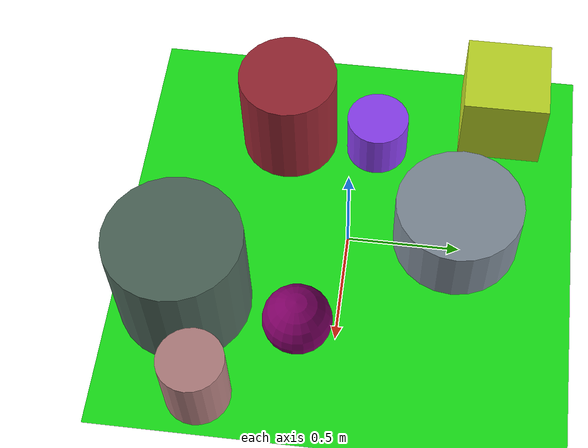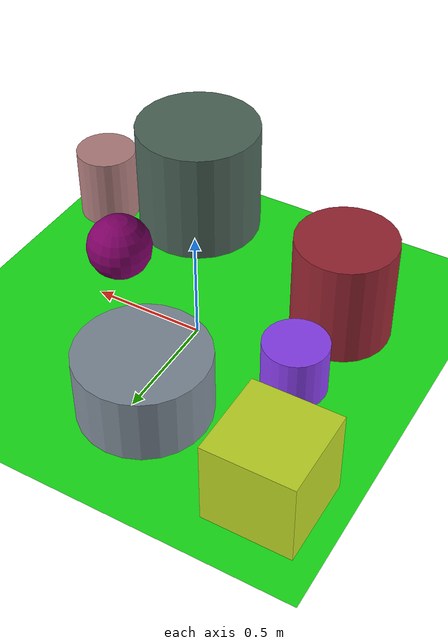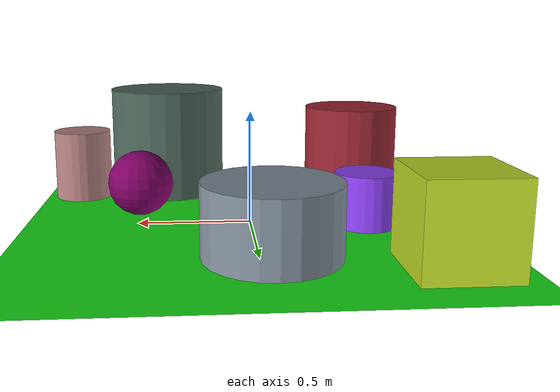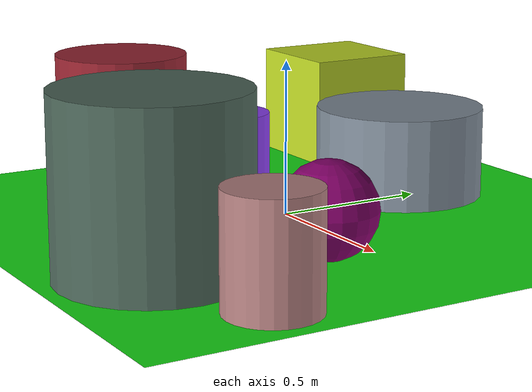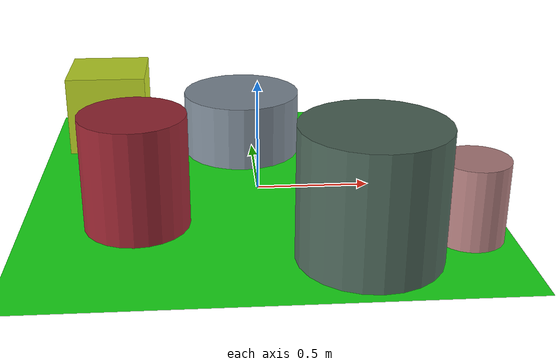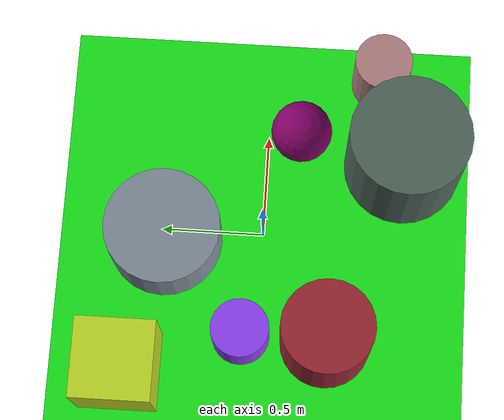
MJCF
<mujoco>
   <asset>
<texture type="skybox" builtin="gradient" rgb1="0.7 1.0 0.4" rgb2="0.5 0.5 0.4" width="256" height="256"/>
<texture name="flat_0" builtin="flat" rgb1="0.5 0.0 0.4" rgb2="0.5 0.0 0.4"  width="200" height="200"/>
<texture name="checker_1" builtin="checker" type="2d" rgb1="0.3 0.3 0.3" rgb2="0.9 0.0 0.1" width="200" height="200"/>
<texture name="checker_2" builtin="checker" type="2d" rgb1="0.3 0.0 0.7" rgb2="0.3 0.8 0.0" width="200" height="200"/>
<texture name="gradient_3" builtin="gradient" rgb1="0.4 0.8 0.9" rgb2="1.0 0.2 0.1" width="200" height="200"/>
<texture name="checker_4" builtin="checker" type="2d" rgb1="0.2 0.3 0.5" rgb2="0.8 0.8 0.7" width="200" height="200"/>
<texture name="gradient_5" builtin="gradient" rgb1="0.8 0.4 1.0" rgb2="0.3 0.1 0.9" width="200" height="200"/>
<texture name="gradient_6" builtin="gradient" rgb1="1.0 0.8 0.2" rgb2="0.5 0.9 0.1" width="200" height="200"/><material name="flat_0_mat" reflectance="0" texture="flat_0" texuniform="true"/>
<material name="checker_1_mat" reflectance="0" texrepeat="9 9" texture="checker_1" texuniform="false" />
<material name="checker_2_mat" reflectance="0" texrepeat="5 5" texture="checker_2" texuniform="false" />
<material name="gradient_3_mat" reflectance="0" texture="gradient_3" texuniform="true"/>
<material name="checker_4_mat" reflectance="0" texrepeat="5 5" texture="checker_4" texuniform="false" />
<material name="gradient_5_mat" reflectance="0" texture="gradient_5" texuniform="true"/>
<material name="gradient_6_mat" reflectance="0" texture="gradient_6" texuniform="true"/>
   </asset>

   <worldbody>
      <light diffuse=".9 .9 .9" pos="0 0 3" dir="0 0 -1"/>
     <geom type="plane" size="1 1 0.1" rgba="0.1 0.9 0.1 1"/>
<geom type="sphere" pos="0.5 -0.16 0.15" size="0.15 0.15 0.15" material="flat_0_mat" />
<geom type="cylinder" pos="-0.52 -0.33 0.24" size="0.22 0.24 0.24" material="checker_1_mat" />
<geom type="cylinder" pos="0.39 -0.67 0.27" size="0.29 0.27 0.27" material="checker_2_mat" />
<geom type="cylinder" pos="0.82 -0.54 0.17" size="0.14 0.17 0.17" material="gradient_3_mat" />
<geom type="cylinder" pos="-0.05 0.48 0.15" size="0.28 0.15 0.15" material="checker_4_mat" />
<geom type="cylinder" pos="-0.51 0.08 0.12" size="0.14 0.12 0.12" material="gradient_5_mat" />
<geom type="box" pos="-0.71 0.65 0.19" size="0.19 0.19 0.19" material="gradient_6_mat" /><camera euler="60 0 180" fovy="60" name="camera_a" pos="0 -1.5 1"></camera>   </worldbody>
</mujoco>
